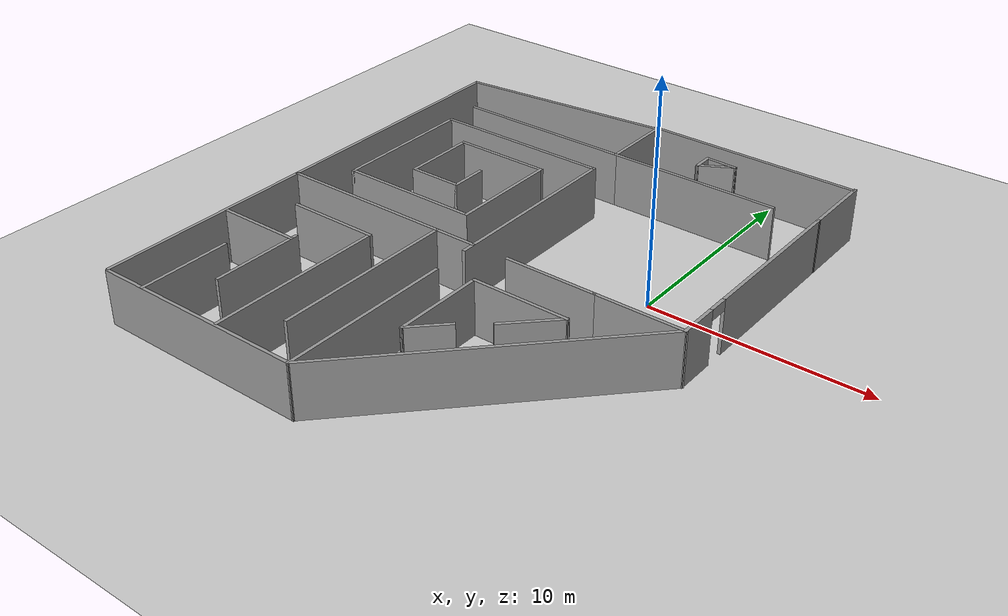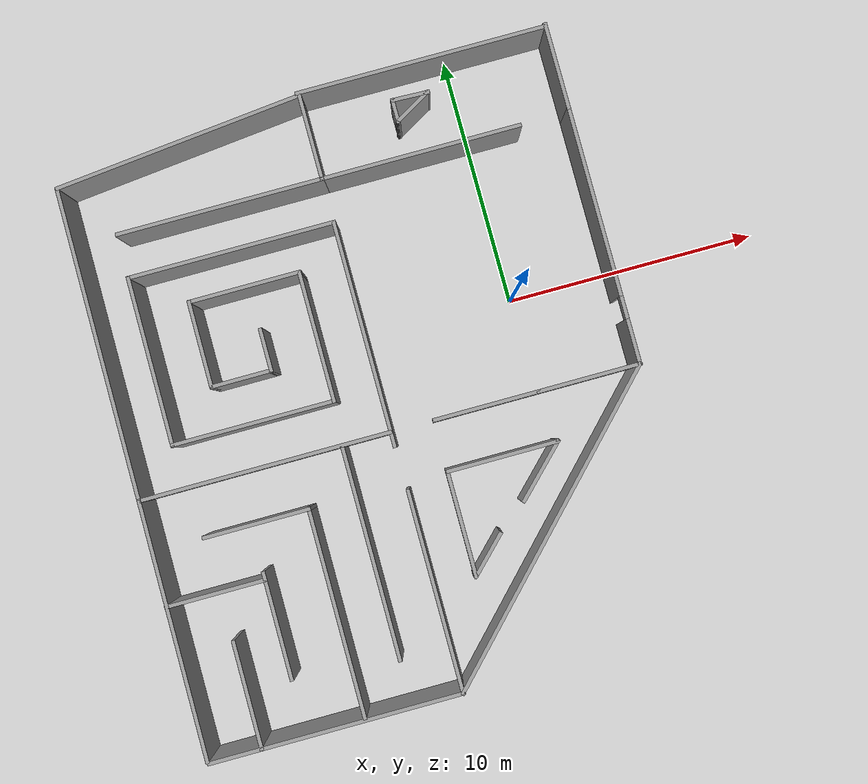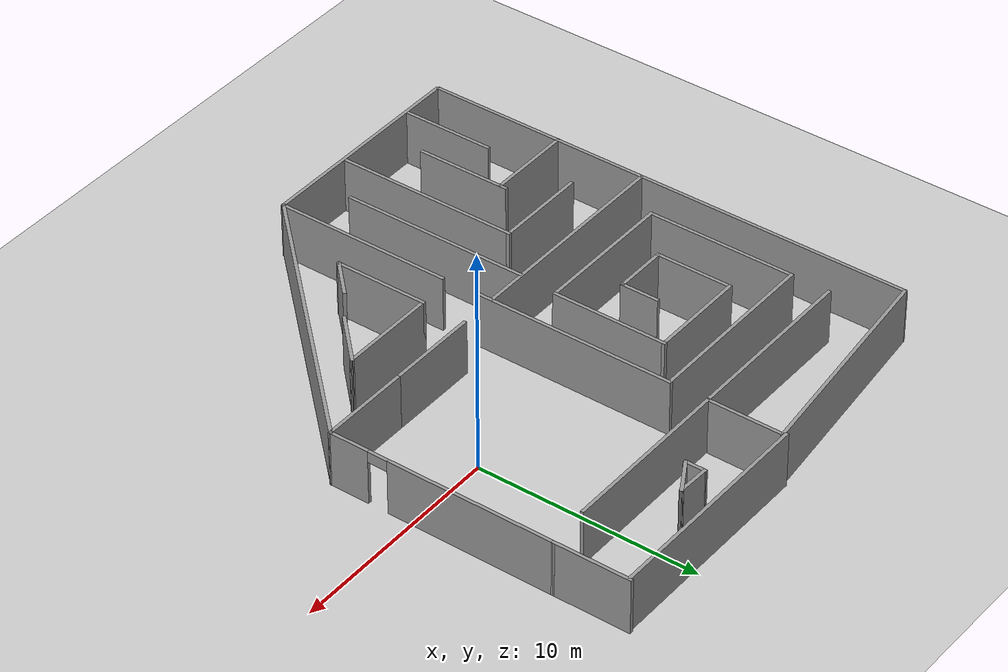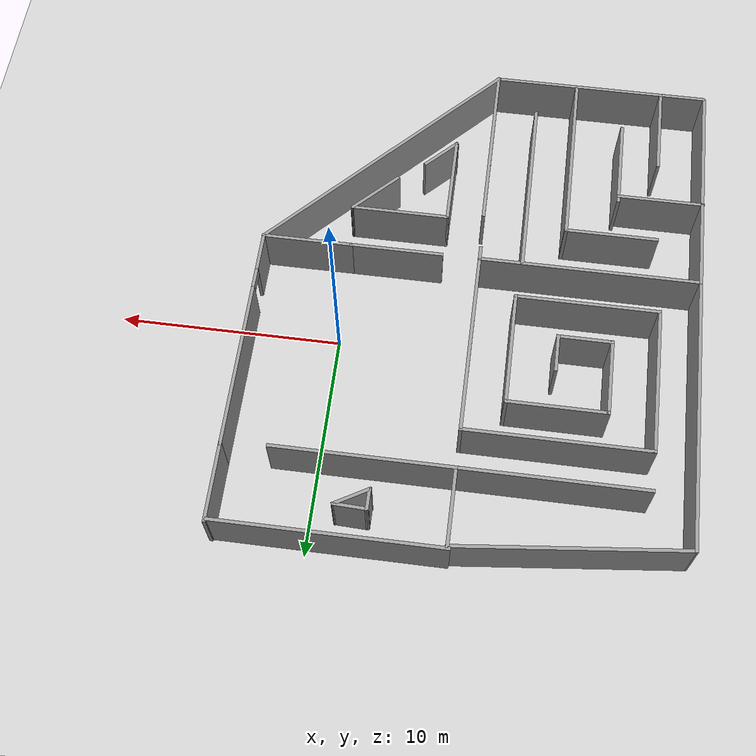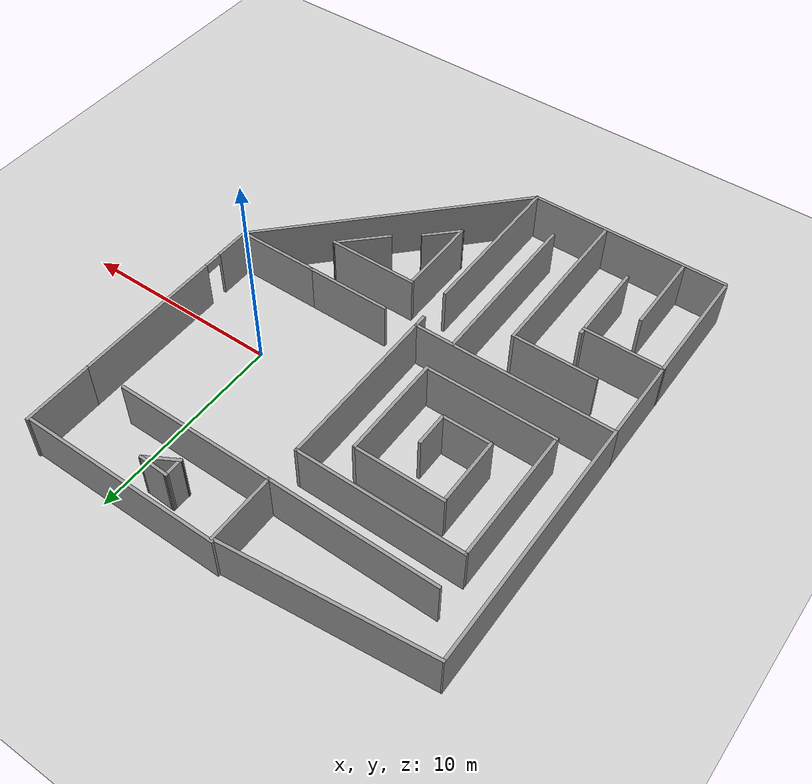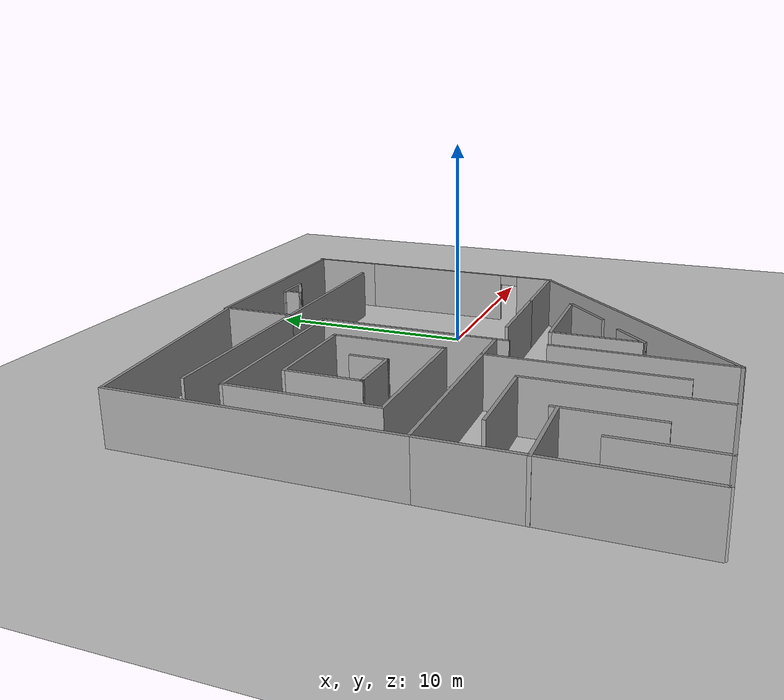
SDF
<sdf version="1.7">
 <world name="default">
  <light name="sun" type="directional">
   <pose>0 0 10 0 -0 0</pose>
   <diffuse>0.8 0.8 0.8 1</diffuse>
   <specular>0.2 0.2 0.2 1</specular>
   <attenuation>
    <range>1000</range>
    <constant>0.9</constant>
    <linear>0.01</linear>
    <quadratic>0.001</quadratic>
   </attenuation>
   <direction>-0.5 0.1 -0.9</direction>
   <spot><inner_angle>0</inner_angle><outer_angle>0</outer_angle><falloff>0</falloff></spot>
  </light>
  <model name="ground_plane">
   <static>1</static>
   <link name="link">
    <collision name="collision">
     <geometry><plane><normal>0 0 1</normal><size>100 100</size></plane></geometry>
     <surface>
      <contact><collide_bitmask>65535</collide_bitmask></contact>
      <friction><ode><mu>100</mu><mu2>50</mu2></ode></friction>
     </surface>
    </collision>
    <visual name="visual">
     <cast_shadows>0</cast_shadows>
     <geometry><plane><normal>0 0 1</normal><size>100 100</size></plane></geometry>
     <material>
      <script><uri>file://media/materials/scripts/gazebo.material</uri><name>Gazebo/Grey</name></script>
     </material>
    </visual>
   </link>
  </model>
  <gravity>0 0 -9.8</gravity>
  <magnetic_field>6e-06 2.3e-05 -4.2e-05</magnetic_field>
  <atmosphere type="adiabatic"/>
  <physics type="ode">
   <max_step_size>0.001</max_step_size>
   <real_time_factor>1</real_time_factor>
   <real_time_update_rate>1000</real_time_update_rate>
  </physics>
  <scene><ambient>0.4 0.4 0.4 1</ambient><background>0.7 0.7 0.7 1</background><shadows>1</shadows></scene>
  <spherical_coordinates>
   <surface_model>EARTH_WGS84</surface_model>
   <latitude_deg>0</latitude_deg>
   <longitude_deg>0</longitude_deg>
   <elevation>0</elevation>
   <heading_deg>0</heading_deg>
  </spherical_coordinates>
  <model name="DOJO">
   <pose>-5.89818 -2.13235 0 0 -0 0</pose>
   <link name="Wall_133">
    <collision name="Wall_133_Collision">
     <geometry><box><size>3.5 0.15 2.5</size></box></geometry>
     <pose>0 0 1.25 0 -0 0</pose>
    </collision>
    <visual name="Wall_133_Visual">
     <pose>0 0 1.25 0 -0 0</pose>
     <geometry><box><size>3.5 0.15 2.5</size></box></geometry>
     <material>
      <script><uri>file://media/materials/scripts/gazebo.material</uri><name>Gazebo/Grey</name></script>
      <ambient>1 1 1 1</ambient>
     </material>
     <meta><layer>0</layer></meta>
    </visual>
    <pose>9.86907 10.2087 0 0 -0 1.5708</pose>
   </link>
   <link name="Wall_135">
    <collision name="Wall_135_Collision">
     <geometry><box><size>10 0.15 2.5</size></box></geometry>
     <pose>0 0 1.25 0 -0 0</pose>
    </collision>
    <visual name="Wall_135_Visual">
     <pose>0 0 1.25 0 -0 0</pose>
     <geometry><box><size>10 0.15 2.5</size></box></geometry>
     <material>
      <script><uri>file://media/materials/scripts/gazebo.material</uri><name>Gazebo/Grey</name></script>
      <ambient>1 1 1 1</ambient>
     </material>
     <meta><layer>0</layer></meta>
    </visual>
    <pose>4.87866 11.8145 0 0 -0 0</pose>
   </link>
   <link name="Wall_139">
    <collision name="Wall_139_Collision">
     <geometry><box><size>3.5 0.15 2.5</size></box></geometry>
     <pose>0 0 1.25 0 -0 0</pose>
    </collision>
    <visual name="Wall_139_Visual">
     <pose>0 0 1.25 0 -0 0</pose>
     <geometry><box><size>3.5 0.15 2.5</size></box></geometry>
     <material>
      <script><uri>file://media/materials/scripts/gazebo.material</uri><name>Gazebo/Grey</name></script>
      <ambient>1 1 1 1</ambient>
     </material>
     <meta><layer>0</layer></meta>
    </visual>
    <pose>0.022079 10.0407 0 0 -0 1.5708</pose>
   </link>
   <link name="Wall_141">
    <collision name="Wall_141_Collision">
     <geometry><box><size>8.25 0.15 2.5</size></box></geometry>
     <pose>0 0 1.25 0 -0 0</pose>
    </collision>
    <visual name="Wall_141_Visual">
     <pose>0 0 1.25 0 -0 0</pose>
     <geometry><box><size>8.25 0.15 2.5</size></box></geometry>
     <material>
      <script><uri>file://media/materials/scripts/gazebo.material</uri><name>Gazebo/Grey</name></script>
      <ambient>1 1 1 1</ambient>
     </material>
     <meta><layer>0</layer></meta>
    </visual>
    <pose>-4.02792 8.36567 0 0 -0 3.14159</pose>
   </link>
   <link name="Wall_143">
    <collision name="Wall_143_Collision">
     <geometry><box><size>8 0.15 2.5</size></box></geometry>
     <pose>0 0 1.25 0 -0 0</pose>
    </collision>
    <visual name="Wall_143_Visual">
     <pose>0 0 1.25 0 -0 0</pose>
     <geometry><box><size>8 0.15 2.5</size></box></geometry>
     <material>
      <script><uri>file://media/materials/scripts/gazebo.material</uri><name>Gazebo/Grey</name></script>
      <ambient>1 1 1 1</ambient>
     </material>
     <meta><layer>0</layer></meta>
    </visual>
    <pose>3.94708 8.36567 0 0 -0 0</pose>
   </link>
   <link name="Wall_145">
    <collision name="Wall_145_Collision">
     <geometry><box><size>10.0687 0.15 2.5</size></box></geometry>
     <pose>0 0 1.25 0 -0 0</pose>
    </collision>
    <visual name="Wall_145_Visual">
     <pose>0 0 1.25 0 -0 0</pose>
     <geometry><box><size>10.0687 0.15 2.5</size></box></geometry>
     <material>
      <script><uri>file://media/materials/scripts/gazebo.material</uri><name>Gazebo/Grey</name></script>
      <ambient>1 1 1 1</ambient>
     </material>
     <meta><layer>0</layer></meta>
    </visual>
    <pose>-4.91021 11.1986 0 0 -0 0.104461</pose>
   </link>
   <link name="Wall_148">
    <collision name="Wall_148_Collision">
     <geometry><box><size>1 0.15 2.5</size></box></geometry>
     <pose>0 0 1.25 0 -0 0</pose>
    </collision>
    <visual name="Wall_148_Visual">
     <pose>0 0 1.25 0 -0 0</pose>
     <geometry><box><size>1 0.15 2.5</size></box></geometry>
     <material>
      <script><uri>file://media/materials/scripts/gazebo.material</uri><name>Gazebo/Grey</name></script>
      <ambient>1 1 1 1</ambient>
     </material>
     <meta><layer>0</layer></meta>
    </visual>
    <pose>3.42477 10.1611 0 0 -0 -1.5708</pose>
   </link>
   <link name="Wall_149">
    <collision name="Wall_149_Collision">
     <geometry><box><size>1.75 0.15 2.5</size></box></geometry>
     <pose>0 0 1.25 0 -0 0</pose>
    </collision>
    <visual name="Wall_149_Visual">
     <pose>0 0 1.25 0 -0 0</pose>
     <geometry><box><size>1.75 0.15 2.5</size></box></geometry>
     <material>
      <script><uri>file://media/materials/scripts/gazebo.material</uri><name>Gazebo/Grey</name></script>
      <ambient>1 1 1 1</ambient>
     </material>
     <meta><layer>0</layer></meta>
    </visual>
    <pose>4.11759 10.1361 0 0 -0 0.523599</pose>
   </link>
   <link name="Wall_150">
    <collision name="Wall_150_Collision">
     <geometry><box><size>1.53654 0.15 2.5</size></box></geometry>
     <pose>0 0 1.25 0 -0 0</pose>
    </collision>
    <visual name="Wall_150_Visual">
     <pose>0 0 1.25 0 -0 0</pose>
     <geometry><box><size>1.53654 0.15 2.5</size></box></geometry>
     <material>
      <script><uri>file://media/materials/scripts/gazebo.material</uri><name>Gazebo/Grey</name></script>
      <ambient>1 1 1 1</ambient>
     </material>
     <meta><layer>0</layer></meta>
    </visual>
    <pose>4.11759 10.5611 0 0 -0 3.10552</pose>
   </link>
   <link name="Wall_22">
    <collision name="Wall_22_Collision">
     <geometry><box><size>4 0.15 2.5</size></box></geometry>
     <pose>0 0 1.25 0 -0 0</pose>
    </collision>
    <visual name="Wall_22_Visual">
     <pose>0 0 1.25 0 -0 0</pose>
     <geometry><box><size>4 0.15 2.5</size></box></geometry>
     <material>
      <script><uri>file://media/materials/scripts/gazebo.material</uri><name>Gazebo/Grey</name></script>
      <ambient>1 1 1 1</ambient>
     </material>
     <meta><layer>0</layer></meta>
    </visual>
    <pose>7.76448 -1.67071 0 0 -0 0</pose>
   </link>
   <link name="Wall_27">
    <pose>9.85428 3.4315 0 0 -0 -1.5737</pose>
    <visual name="Wall_27_Visual_0">
     <pose>-1.37582 0 1.25 0 -0 0</pose>
     <geometry><box><size>7.60284 0.15 2.5</size></box></geometry>
     <material>
      <script><uri>file://media/materials/scripts/gazebo.material</uri><name>Gazebo/Grey</name></script>
      <ambient>1 1 1 1</ambient>
     </material>
     <meta><layer>0</layer></meta>
    </visual>
    <collision name="Wall_27_Collision_0">
     <geometry><box><size>7.60284 0.15 2.5</size></box></geometry>
     <pose>-1.37582 0 1.25 0 -0 0</pose>
    </collision>
    <visual name="Wall_27_Visual_1">
     <pose>4.25142 0 1.25 0 -0 0</pose>
     <geometry><box><size>1.85163 0.15 2.5</size></box></geometry>
     <material>
      <script><uri>file://media/materials/scripts/gazebo.material</uri><name>Gazebo/Grey</name></script>
      <ambient>1 1 1 1</ambient>
     </material>
     <meta><layer>0</layer></meta>
    </visual>
    <collision name="Wall_27_Collision_1">
     <geometry><box><size>1.85163 0.15 2.5</size></box></geometry>
     <pose>4.25142 0 1.25 0 -0 0</pose>
    </collision>
    <visual name="Wall_27_Visual_2">
     <pose>2.8756 0 2.25 0 -0 0</pose>
     <geometry><box><size>0.9 0.15 0.5</size></box></geometry>
     <material>
      <script><uri>file://media/materials/scripts/gazebo.material</uri><name>Gazebo/Grey</name></script>
      <ambient>1 1 1 1</ambient>
     </material>
     <meta><layer>0</layer></meta>
    </visual>
    <collision name="Wall_27_Collision_2">
     <geometry><box><size>0.9 0.15 0.5</size></box></geometry>
     <pose>2.8756 0 2.25 0 -0 0</pose>
    </collision>
   </link>
   <link name="Wall_30">
    <collision name="Wall_30_Collision">
     <geometry><box><size>12.5 0.15 2.5</size></box></geometry>
     <pose>0 0 1.25 0 -0 0</pose>
    </collision>
    <visual name="Wall_30_Visual">
     <pose>0 0 1.25 0 -0 0</pose>
     <geometry><box><size>12.5 0.15 2.5</size></box></geometry>
     <material>
      <script><uri>file://media/materials/scripts/gazebo.material</uri><name>Gazebo/Grey</name></script>
      <ambient>1 1 1 1</ambient>
     </material>
     <meta><layer>0</layer></meta>
    </visual>
    <pose>-9.86052 4.50429 0 0 -0 -1.5708</pose>
   </link>
   <link name="Wall_33">
    <collision name="Wall_33_Collision">
     <geometry><box><size>8.26989 0.15 2.5</size></box></geometry>
     <pose>0 0 1.25 0 -0 0</pose>
    </collision>
    <visual name="Wall_33_Visual">
     <pose>0 0 1.25 0 -0 0</pose>
     <geometry><box><size>8.26989 0.15 2.5</size></box></geometry>
     <material>
      <script><uri>file://media/materials/scripts/gazebo.material</uri><name>Gazebo/Grey</name></script>
      <ambient>1 1 1 1</ambient>
     </material>
     <meta><layer>0</layer></meta>
    </visual>
    <pose>-4.04199 6.63533 0 0 -0 3.14159</pose>
   </link>
   <link name="Wall_34">
    <collision name="Wall_34_Collision">
     <geometry><box><size>6.75 0.15 2.5</size></box></geometry>
     <pose>0 0 1.25 0 -0 0</pose>
    </collision>
    <visual name="Wall_34_Visual">
     <pose>0 0 1.25 0 -0 0</pose>
     <geometry><box><size>6.75 0.15 2.5</size></box></geometry>
     <material>
      <script><uri>file://media/materials/scripts/gazebo.material</uri><name>Gazebo/Grey</name></script>
      <ambient>1 1 1 1</ambient>
     </material>
     <meta><layer>0</layer></meta>
    </visual>
    <pose>-8.10193 3.33533 0 0 -0 -1.5708</pose>
   </link>
   <link name="Wall_36">
    <collision name="Wall_36_Collision">
     <geometry><box><size>10 0.15 2.5</size></box></geometry>
     <pose>0 0 1.25 0 -0 0</pose>
    </collision>
    <visual name="Wall_36_Visual">
     <pose>0 0 1.25 0 -0 0</pose>
     <geometry><box><size>10 0.15 2.5</size></box></geometry>
     <material>
      <script><uri>file://media/materials/scripts/gazebo.material</uri><name>Gazebo/Grey</name></script>
      <ambient>1 1 1 1</ambient>
     </material>
     <meta><layer>0</layer></meta>
    </visual>
    <pose>-4.93552 -1.67071 0 0 -0 0</pose>
   </link>
   <link name="Wall_38">
    <collision name="Wall_38_Collision">
     <geometry><box><size>6.5 0.15 2.5</size></box></geometry>
     <pose>0 0 1.25 0 -0 0</pose>
    </collision>
    <visual name="Wall_38_Visual">
     <pose>0 0 1.25 0 -0 0</pose>
     <geometry><box><size>6.5 0.15 2.5</size></box></geometry>
     <material>
      <script><uri>file://media/materials/scripts/gazebo.material</uri><name>Gazebo/Grey</name></script>
      <ambient>1 1 1 1</ambient>
     </material>
     <meta><layer>0</layer></meta>
    </visual>
    <pose>-4.92693 0.035328 0 0 -0 0</pose>
   </link>
   <link name="Wall_39">
    <collision name="Wall_39_Collision">
     <geometry><box><size>5.25 0.15 2.5</size></box></geometry>
     <pose>0 0 1.25 0 -0 0</pose>
    </collision>
    <visual name="Wall_39_Visual">
     <pose>0 0 1.25 0 -0 0</pose>
     <geometry><box><size>5.25 0.15 2.5</size></box></geometry>
     <material>
      <script><uri>file://media/materials/scripts/gazebo.material</uri><name>Gazebo/Grey</name></script>
      <ambient>1 1 1 1</ambient>
     </material>
     <meta><layer>0</layer></meta>
    </visual>
    <pose>-1.75193 2.58533 0 0 -0 1.5708</pose>
   </link>
   <link name="Wall_40">
    <collision name="Wall_40_Collision">
     <geometry><box><size>4.5 0.15 2.5</size></box></geometry>
     <pose>0 0 1.25 0 -0 0</pose>
    </collision>
    <visual name="Wall_40_Visual">
     <pose>0 0 1.25 0 -0 0</pose>
     <geometry><box><size>4.5 0.15 2.5</size></box></geometry>
     <material>
      <script><uri>file://media/materials/scripts/gazebo.material</uri><name>Gazebo/Grey</name></script>
      <ambient>1 1 1 1</ambient>
     </material>
     <meta><layer>0</layer></meta>
    </visual>
    <pose>-3.92693 5.13533 0 0 -0 3.14159</pose>
   </link>
   <link name="Wall_41">
    <collision name="Wall_41_Collision">
     <geometry><box><size>3.5 0.15 2.5</size></box></geometry>
     <pose>0 0 1.25 0 -0 0</pose>
    </collision>
    <visual name="Wall_41_Visual">
     <pose>0 0 1.25 0 -0 0</pose>
     <geometry><box><size>3.5 0.15 2.5</size></box></geometry>
     <material>
      <script><uri>file://media/materials/scripts/gazebo.material</uri><name>Gazebo/Grey</name></script>
      <ambient>1 1 1 1</ambient>
     </material>
     <meta><layer>0</layer></meta>
    </visual>
    <pose>-6.10193 3.46033 0 0 -0 -1.5708</pose>
   </link>
   <link name="Wall_42">
    <collision name="Wall_42_Collision">
     <geometry><box><size>2.5 0.15 2.5</size></box></geometry>
     <pose>0 0 1.25 0 -0 0</pose>
    </collision>
    <visual name="Wall_42_Visual">
     <pose>0 0 1.25 0 -0 0</pose>
     <geometry><box><size>2.5 0.15 2.5</size></box></geometry>
     <material>
      <script><uri>file://media/materials/scripts/gazebo.material</uri><name>Gazebo/Grey</name></script>
      <ambient>1 1 1 1</ambient>
     </material>
     <meta><layer>0</layer></meta>
    </visual>
    <pose>-4.92693 1.78533 0 0 -0 0</pose>
   </link>
   <link name="Wall_43">
    <collision name="Wall_43_Collision">
     <geometry><box><size>1.75 0.15 2.5</size></box></geometry>
     <pose>0 0 1.25 0 -0 0</pose>
    </collision>
    <visual name="Wall_43_Visual">
     <pose>0 0 1.25 0 -0 0</pose>
     <geometry><box><size>1.75 0.15 2.5</size></box></geometry>
     <material>
      <script><uri>file://media/materials/scripts/gazebo.material</uri><name>Gazebo/Grey</name></script>
      <ambient>1 1 1 1</ambient>
     </material>
     <meta><layer>0</layer></meta>
    </visual>
    <pose>-3.75193 2.58533 0 0 -0 1.5708</pose>
   </link>
   <link name="Wall_51">
    <collision name="Wall_51_Collision">
     <geometry><box><size>14.265 0.15 2.5</size></box></geometry>
     <pose>0 0 1.25 0 -0 0</pose>
    </collision>
    <visual name="Wall_51_Visual">
     <pose>0 0 1.25 0 -0 0</pose>
     <geometry><box><size>14.265 0.15 2.5</size></box></geometry>
     <material>
      <script><uri>file://media/materials/scripts/gazebo.material</uri><name>Gazebo/Grey</name></script>
      <ambient>1 1 1 1</ambient>
     </material>
     <meta><layer>0</layer></meta>
    </visual>
    <pose>4.95172 -6.76169 0 0 -0 0.805761</pose>
   </link>
   <link name="Wall_53">
    <collision name="Wall_53_Collision">
     <geometry><box><size>4.25 0.15 2.5</size></box></geometry>
     <pose>0 0 1.25 0 -0 0</pose>
    </collision>
    <visual name="Wall_53_Visual">
     <pose>0 0 1.25 0 -0 0</pose>
     <geometry><box><size>4.25 0.15 2.5</size></box></geometry>
     <material>
      <script><uri>file://media/materials/scripts/gazebo.material</uri><name>Gazebo/Grey</name></script>
      <ambient>1 1 1 1</ambient>
     </material>
     <meta><layer>0</layer></meta>
    </visual>
    <pose>3.78948 -1.67071 0 0 -0 3.14159</pose>
   </link>
   <link name="Wall_55">
    <collision name="Wall_55_Collision">
     <geometry><box><size>10.0199 0.15 2.5</size></box></geometry>
     <pose>0 0 1.25 0 -0 0</pose>
    </collision>
    <visual name="Wall_55_Visual">
     <pose>0 0 1.25 0 -0 0</pose>
     <geometry><box><size>10.0199 0.15 2.5</size></box></geometry>
     <material>
      <script><uri>file://media/materials/scripts/gazebo.material</uri><name>Gazebo/Grey</name></script>
      <ambient>1 1 1 1</ambient>
     </material>
     <meta><layer>0</layer></meta>
    </visual>
    <pose>-4.87099 -11.8527 0 0 -0 3.14159</pose>
   </link>
   <link name="Wall_57">
    <collision name="Wall_57_Collision">
     <geometry><box><size>10.25 0.15 2.5</size></box></geometry>
     <pose>0 0 1.25 0 -0 0</pose>
    </collision>
    <visual name="Wall_57_Visual">
     <pose>0 0 1.25 0 -0 0</pose>
     <geometry><box><size>10.25 0.15 2.5</size></box></geometry>
     <material>
      <script><uri>file://media/materials/scripts/gazebo.material</uri><name>Gazebo/Grey</name></script>
      <ambient>1 1 1 1</ambient>
     </material>
     <meta><layer>0</layer></meta>
    </visual>
    <pose>-9.86052 -6.72071 0 0 -0 -1.5708</pose>
   </link>
   <link name="Wall_60">
    <collision name="Wall_60_Collision">
     <geometry><box><size>9 0.15 2.5</size></box></geometry>
     <pose>0 0 1.25 0 -0 0</pose>
    </collision>
    <visual name="Wall_60_Visual">
     <pose>0 0 1.25 0 -0 0</pose>
     <geometry><box><size>9 0.15 2.5</size></box></geometry>
     <material>
      <script><uri>file://media/materials/scripts/gazebo.material</uri><name>Gazebo/Grey</name></script>
      <ambient>1 1 1 1</ambient>
     </material>
     <meta><layer>0</layer></meta>
    </visual>
    <pose>0.017959 2.21033 0 0 -0 -1.5708</pose>
   </link>
   <link name="Wall_62">
    <collision name="Wall_62_Collision">
     <geometry><box><size>8 0.15 2.5</size></box></geometry>
     <pose>0 0 1.25 0 -0 0</pose>
    </collision>
    <visual name="Wall_62_Visual">
     <pose>0 0 1.25 0 -0 0</pose>
     <geometry><box><size>8 0.15 2.5</size></box></geometry>
     <material>
      <script><uri>file://media/materials/scripts/gazebo.material</uri><name>Gazebo/Grey</name></script>
      <ambient>1 1 1 1</ambient>
     </material>
     <meta><layer>0</layer></meta>
    </visual>
    <pose>0.063959 -7.92767 0 0 -0 1.5708</pose>
   </link>
   <link name="Wall_64">
    <collision name="Wall_64_Collision">
     <geometry><box><size>8.5 0.15 2.5</size></box></geometry>
     <pose>0 0 1.25 0 -0 0</pose>
    </collision>
    <visual name="Wall_64_Visual">
     <pose>0 0 1.25 0 -0 0</pose>
     <geometry><box><size>8.5 0.15 2.5</size></box></geometry>
     <material>
      <script><uri>file://media/materials/scripts/gazebo.material</uri><name>Gazebo/Grey</name></script>
      <ambient>1 1 1 1</ambient>
     </material>
     <meta><layer>0</layer></meta>
    </visual>
    <pose>-1.90121 -5.85819 0 0 -0 -1.5708</pose>
   </link>
   <link name="Wall_66">
    <collision name="Wall_66_Collision">
     <geometry><box><size>8.25 0.15 2.5</size></box></geometry>
     <pose>0 0 1.25 0 -0 0</pose>
    </collision>
    <visual name="Wall_66_Visual">
     <pose>0 0 1.25 0 -0 0</pose>
     <geometry><box><size>8.25 0.15 2.5</size></box></geometry>
     <material>
      <script><uri>file://media/materials/scripts/gazebo.material</uri><name>Gazebo/Grey</name></script>
      <ambient>1 1 1 1</ambient>
     </material>
     <meta><layer>0</layer></meta>
    </visual>
    <pose>-3.74121 -7.7077 0 0 -0 1.5708</pose>
   </link>
   <link name="Wall_70">
    <collision name="Wall_70_Collision">
     <geometry><box><size>4.25 0.15 2.5</size></box></geometry>
     <pose>0 0 1.25 0 -0 0</pose>
    </collision>
    <visual name="Wall_70_Visual">
     <pose>0 0 1.25 0 -0 0</pose>
     <geometry><box><size>4.25 0.15 2.5</size></box></geometry>
     <material>
      <script><uri>file://media/materials/scripts/gazebo.material</uri><name>Gazebo/Grey</name></script>
      <ambient>1 1 1 1</ambient>
     </material>
     <meta><layer>0</layer></meta>
    </visual>
    <pose>-6.01947 -7.5964 0 0 -0 1.5708</pose>
   </link>
   <link name="Wall_74">
    <collision name="Wall_74_Collision">
     <geometry><box><size>4.25 0.15 2.5</size></box></geometry>
     <pose>0 0 1.25 0 -0 0</pose>
    </collision>
    <visual name="Wall_74_Visual">
     <pose>0 0 1.25 0 -0 0</pose>
     <geometry><box><size>4.25 0.15 2.5</size></box></geometry>
     <material>
      <script><uri>file://media/materials/scripts/gazebo.material</uri><name>Gazebo/Grey</name></script>
      <ambient>1 1 1 1</ambient>
     </material>
     <meta><layer>0</layer></meta>
    </visual>
    <pose>-5.79121 -3.6577 0 0 -0 3.14159</pose>
   </link>
   <link name="Wall_77">
    <collision name="Wall_77_Collision">
     <geometry><box><size>4 0.15 2.5</size></box></geometry>
     <pose>0 0 1.25 0 -0 0</pose>
    </collision>
    <visual name="Wall_77_Visual">
     <pose>0 0 1.25 0 -0 0</pose>
     <geometry><box><size>4 0.15 2.5</size></box></geometry>
     <material>
      <script><uri>file://media/materials/scripts/gazebo.material</uri><name>Gazebo/Grey</name></script>
      <ambient>1 1 1 1</ambient>
     </material>
     <meta><layer>0</layer></meta>
    </visual>
    <pose>-7.94552 -5.7933 0 0 -0 0</pose>
   </link>
   <link name="Wall_79">
    <collision name="Wall_79_Collision">
     <geometry><box><size>4.25 0.15 2.5</size></box></geometry>
     <pose>0 0 1.25 0 -0 0</pose>
    </collision>
    <visual name="Wall_79_Visual">
     <pose>0 0 1.25 0 -0 0</pose>
     <geometry><box><size>4.25 0.15 2.5</size></box></geometry>
     <material>
      <script><uri>file://media/materials/scripts/gazebo.material</uri><name>Gazebo/Grey</name></script>
      <ambient>1 1 1 1</ambient>
     </material>
     <meta><layer>0</layer></meta>
    </visual>
    <pose>-7.77362 -9.7859 0 0 -0 1.5708</pose>
   </link>
   <link name="Wall_81">
    <collision name="Wall_81_Collision">
     <geometry><box><size>4.25 0.15 2.5</size></box></geometry>
     <pose>0 0 1.25 0 -0 0</pose>
    </collision>
    <visual name="Wall_81_Visual">
     <pose>0 0 1.25 0 -0 0</pose>
     <geometry><box><size>4.25 0.15 2.5</size></box></geometry>
     <material>
      <script><uri>file://media/materials/scripts/gazebo.material</uri><name>Gazebo/Grey</name></script>
      <ambient>1 1 1 1</ambient>
     </material>
     <meta><layer>0</layer></meta>
    </visual>
    <pose>1.69266 -5.72789 0 0 -0 -1.5708</pose>
   </link>
   <link name="Wall_86">
    <collision name="Wall_86_Collision">
     <geometry><box><size>4.5 0.15 2.5</size></box></geometry>
     <pose>0 0 1.25 0 -0 0</pose>
    </collision>
    <visual name="Wall_86_Visual">
     <pose>0 0 1.25 0 -0 0</pose>
     <geometry><box><size>4.5 0.15 2.5</size></box></geometry>
     <material>
      <script><uri>file://media/materials/scripts/gazebo.material</uri><name>Gazebo/Grey</name></script>
      <ambient>1 1 1 1</ambient>
     </material>
     <meta><layer>0</layer></meta>
    </visual>
    <pose>3.86766 -3.67789 0 0 -0 0</pose>
   </link>
   <link name="Wall_91">
    <collision name="Wall_91_Collision">
     <geometry><box><size>2 0.15 2.5</size></box></geometry>
     <pose>0 0 1.25 0 -0 0</pose>
    </collision>
    <visual name="Wall_91_Visual">
     <pose>0 0 1.25 0 -0 0</pose>
     <geometry><box><size>2 0.15 2.5</size></box></geometry>
     <material>
      <script><uri>file://media/materials/scripts/gazebo.material</uri><name>Gazebo/Grey</name></script>
      <ambient>1 1 1 1</ambient>
     </material>
     <meta><layer>0</layer></meta>
    </visual>
    <pose>2.34673 -7.12382 0 0 -0 0.785398</pose>
   </link>
   <link name="Wall_93">
    <collision name="Wall_93_Collision">
     <geometry><box><size>2.75 0.15 2.5</size></box></geometry>
     <pose>0 0 1.25 0 -0 0</pose>
    </collision>
    <visual name="Wall_93_Visual">
     <pose>0 0 1.25 0 -0 0</pose>
     <geometry><box><size>2.75 0.15 2.5</size></box></geometry>
     <material>
      <script><uri>file://media/materials/scripts/gazebo.material</uri><name>Gazebo/Grey</name></script>
      <ambient>1 1 1 1</ambient>
     </material>
     <meta><layer>0</layer></meta>
    </visual>
    <pose>5.12342 -4.59713 0 0 -0 -2.35619</pose>
   </link>
   <static>1</static>
  </model>
 </world>
</sdf>
